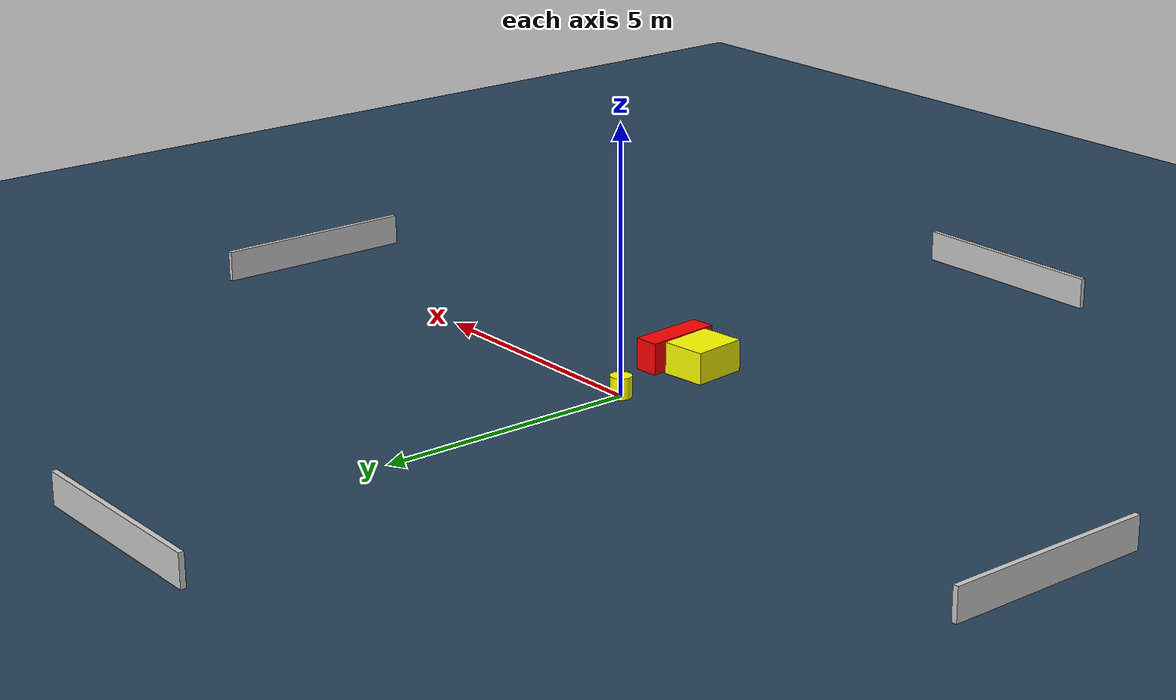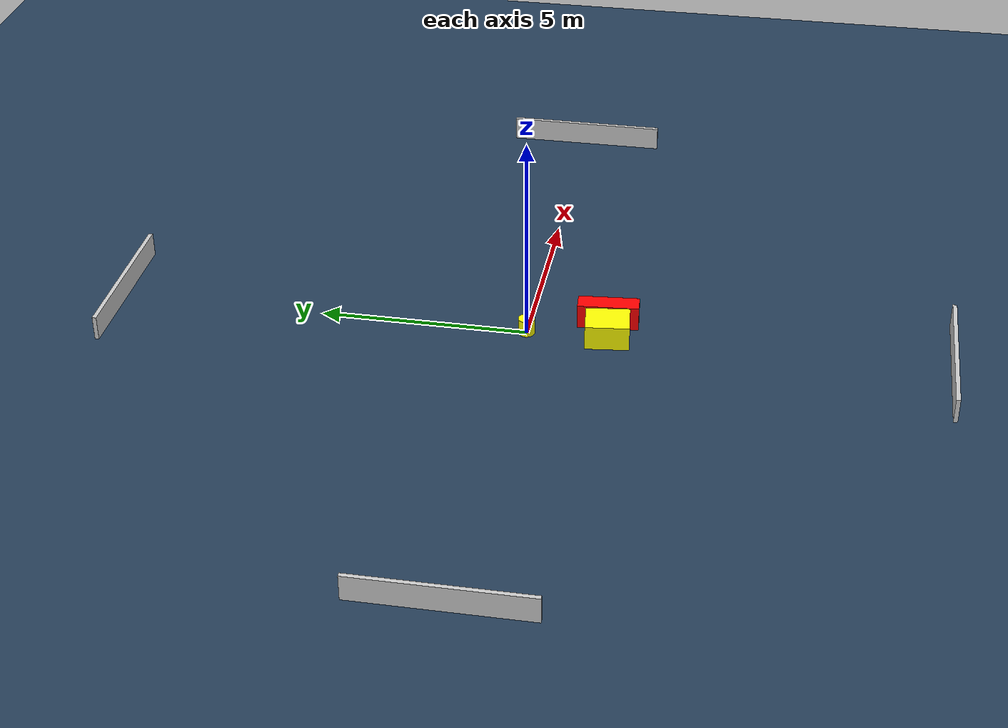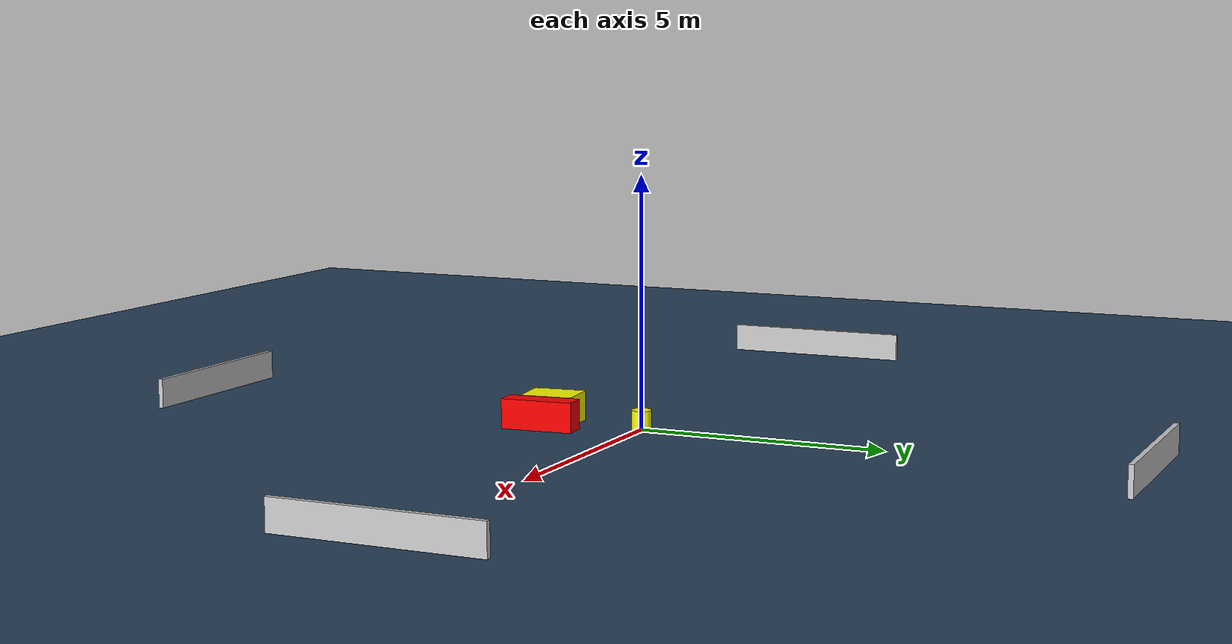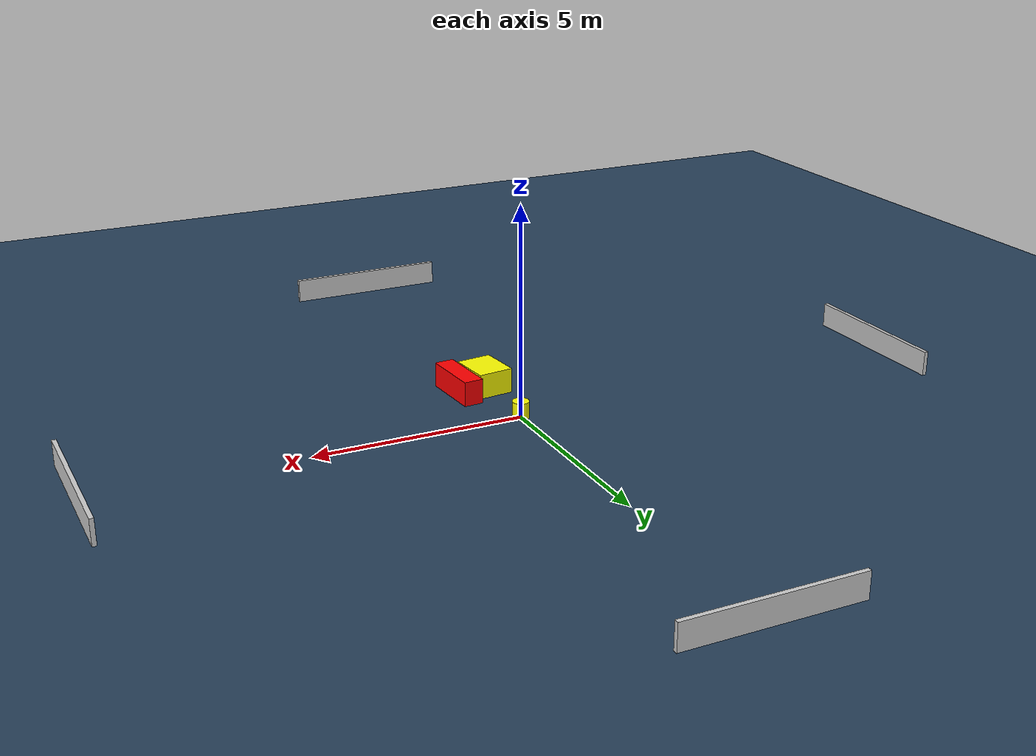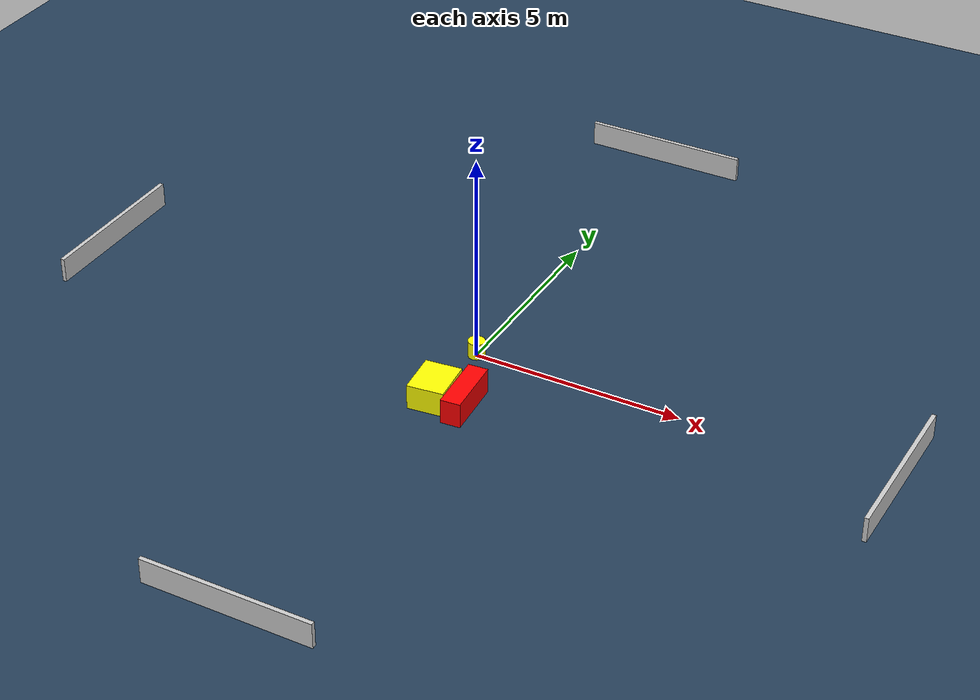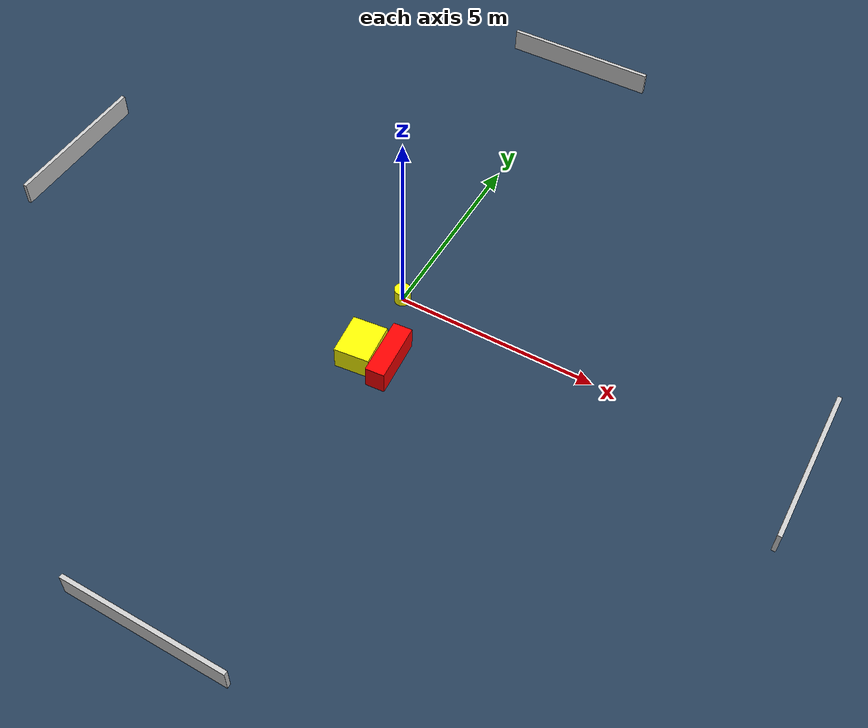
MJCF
<?xml version="1.0" ?>
<mujoco model="generated_environment">
  <option timestep="0.01" integrator="RK4" cone="elliptic"/>
  <default>
    <geom density="1"/>
  </default>
  <asset>
    <texture builtin="gradient" height="3072" name="skybox" rgb1="0.3 0.5 0.7" rgb2="0 0 0" type="skybox" width="512"/>
    <texture builtin="checker" height="300" name="groundplane" rgb1="0.2 0.3 0.4" rgb2="0.1 0.2 0.3" type="2d" width="300"/>
    <material name="groundplane" reflectance="0.2" texrepeat="5 5" texture="groundplane"/>
  </asset>
  <worldbody>
    <light dir="0 0 -1" directional="true" pos="0 0 1.5"/>
    <geom condim="3" friction="0.5 0.005 0.001" material="groundplane" name="floor" pos="0 0 0" size="0 0 0.05" type="plane"/>
    <body name="walls">
      <geom name="wall_1" condim="4" pos="-10.0 0.0 0.3" rgba="0.800000011920929 0.800000011920929 0.800000011920929 1.0" size="0.05 2.0 0.3" type="box"/>
      <geom name="wall_2" condim="4" pos="10.0 0.0 0.3" rgba="0.800000011920929 0.800000011920929 0.800000011920929 1.0" size="0.05 2.0 0.3" type="box"/>
      <geom name="wall_3" condim="4" pos="0.0 -10.0 0.3" rgba="0.800000011920929 0.800000011920929 0.800000011920929 1.0" size="2.0 0.05 0.3" type="box"/>
      <geom name="wall_4" condim="4" pos="0.0 10.0 0.3" rgba="0.800000011920929 0.800000011920929 0.800000011920929 1.0" size="2.0 0.05 0.3" type="box"/>
    </body>
    <body name="robot">
      <joint name="joint_x" type="slide" pos="0 0 0" axis="1 0 0"/>
      <joint name="joint_y" type="slide" pos="0 0 0" axis="0 1 0"/>
      <geom name="robot" type="cylinder" pos="0.0 0.0 0.2" size="0.2 0.2 0.0" mass="5.0" friction="1.0 0.005 0.0001" condim="4" rgba="1.0 1.0 0.0 1.0"/>
    </body>
    <body name="obstacle_1_movable">
      <geom name="obstacle_1_movable" condim="4" pos="0.01789611048410851 -1.9295622120092824 0.3" euler="0 0 276.158409253075" friction="0.0 0.005 0.001" rgba="1.0 1.0 0.0 1.0" size="0.5270673912874986 0.43231764182341964 0.3" type="box" mass="0.1"/>
      <joint type="free"/>
    </body>
    <body name="obstacle_2_static">
      <geom name="obstacle_2_static" condim="4" pos="0.7231691178890768 -1.8582399648525156 0.3" euler="0 0 184.46787659546686" friction="0.0 0.005 0.001" rgba="1.0 0.0 0.0 1.0" size="0.23477134773263475 0.735486222804167 0.3" type="box"/>
    </body>
  </worldbody>
  <actuator>
    <motor name="actuator_x" joint="joint_x" gear="1" ctrlrange="-1 1"/>
    <motor name="actuator_y" joint="joint_y" gear="1" ctrlrange="-1 1"/>
  </actuator>
</mujoco>
